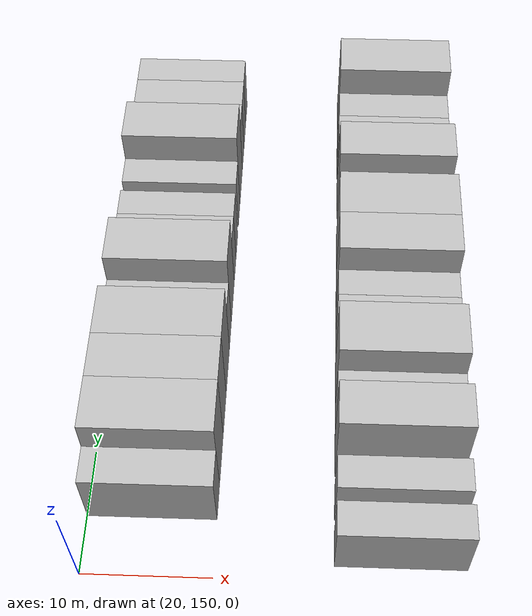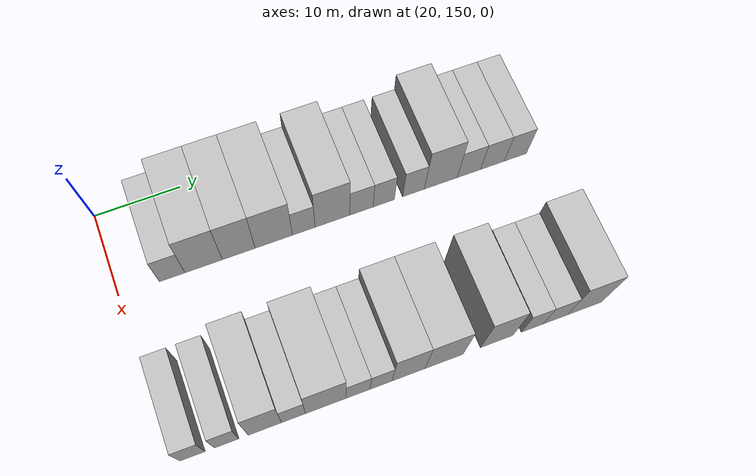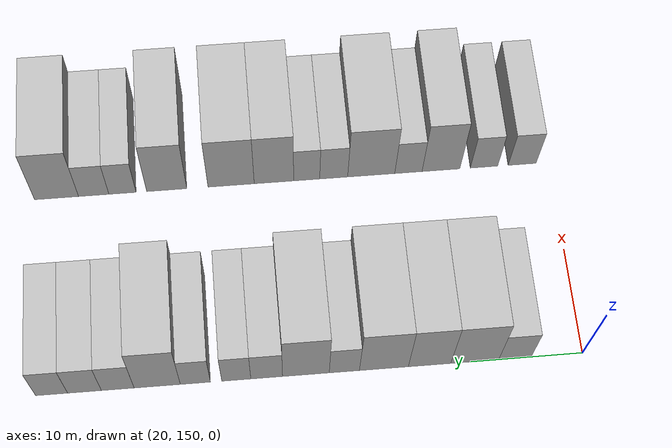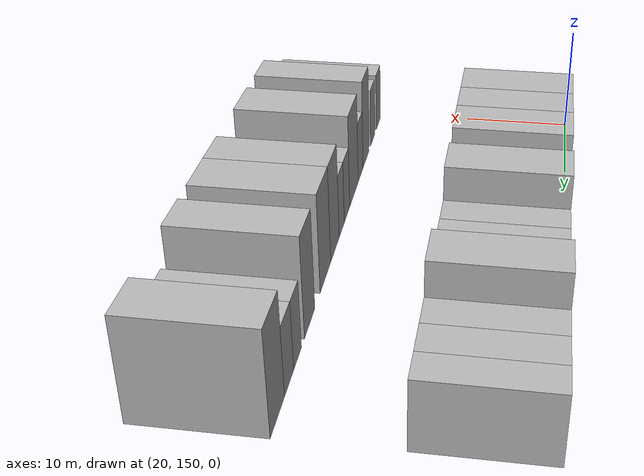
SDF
<sdf version="1.6">
 <world name="default">
  <model name="building_92">
   <static>1</static>
   <pose>25.0000 156.0804 0 0.000000 0.000000 0.000000</pose>
   <link name="link">
    <pose>0 0 3.00 0 0 0</pose>
    <collision name="collision"><geometry><box><size>10.0000 2.9036 6.0000</size></box></geometry></collision>
    <visual name="visual">
     <cast_shadows>0</cast_shadows>
     <geometry><box><size>10.0000 2.9036 6.0000</size></box></geometry>
     <material>
      <script>
       <uri>model://HANNAS_wall/materials/scripts</uri>
       <uri>model://HANNAS_wall/materials/textures</uri>
       <name>vrc/HANNAS_wall</name>
      </script>
     </material>
    </visual>
   </link>
  </model>
  <model name="building_93">
   <static>1</static>
   <pose>25.0000 159.6761 0 0.000000 0.000000 0.000000</pose>
   <link name="link">
    <pose>0 0 4.50 0 0 0</pose>
    <collision name="collision"><geometry><box><size>10.0000 4.2876 9.0000</size></box></geometry></collision>
    <visual name="visual">
     <cast_shadows>0</cast_shadows>
     <geometry><box><size>10.0000 4.2876 9.0000</size></box></geometry>
     <material>
      <script>
       <uri>model://HANNAS_wall/materials/scripts</uri>
       <uri>model://HANNAS_wall/materials/textures</uri>
       <name>vrc/HANNAS_wall</name>
      </script>
     </material>
    </visual>
   </link>
  </model>
  <model name="building_94">
   <static>1</static>
   <pose>25.0000 163.7129 0 0.000000 0.000000 0.000000</pose>
   <link name="link">
    <pose>0 0 4.50 0 0 0</pose>
    <collision name="collision"><geometry><box><size>10.0000 3.7861 9.0000</size></box></geometry></collision>
    <visual name="visual">
     <cast_shadows>0</cast_shadows>
     <geometry><box><size>10.0000 3.7861 9.0000</size></box></geometry>
     <material>
      <script>
       <uri>model://HANNAS_wall/materials/scripts</uri>
       <uri>model://HANNAS_wall/materials/textures</uri>
       <name>vrc/HANNAS_wall</name>
      </script>
     </material>
    </visual>
   </link>
  </model>
  <model name="building_95">
   <static>1</static>
   <pose>25.0000 167.7849 0 0.000000 0.000000 0.000000</pose>
   <link name="link">
    <pose>0 0 4.50 0 0 0</pose>
    <collision name="collision"><geometry><box><size>10.0000 4.3579 9.0000</size></box></geometry></collision>
    <visual name="visual">
     <cast_shadows>0</cast_shadows>
     <geometry><box><size>10.0000 4.3579 9.0000</size></box></geometry>
     <material>
      <script>
       <uri>model://HANNAS_wall/materials/scripts</uri>
       <uri>model://HANNAS_wall/materials/textures</uri>
       <name>vrc/HANNAS_wall</name>
      </script>
     </material>
    </visual>
   </link>
  </model>
  <model name="building_96">
   <static>1</static>
   <pose>25.0000 171.3018 0 0.000000 0.000000 0.000000</pose>
   <link name="link">
    <pose>0 0 3.00 0 0 0</pose>
    <collision name="collision"><geometry><box><size>10.0000 2.6759 6.0000</size></box></geometry></collision>
    <visual name="visual">
     <cast_shadows>0</cast_shadows>
     <geometry><box><size>10.0000 2.6759 6.0000</size></box></geometry>
     <material>
      <script>
       <uri>model://HANNAS_wall/materials/scripts</uri>
       <uri>model://HANNAS_wall/materials/textures</uri>
       <name>vrc/HANNAS_wall</name>
      </script>
     </material>
    </visual>
   </link>
  </model>
  <model name="building_97">
   <static>1</static>
   <pose>25.0000 174.7092 0 0.000000 0.000000 0.000000</pose>
   <link name="link">
    <pose>0 0 4.50 0 0 0</pose>
    <collision name="collision"><geometry><box><size>10.0000 4.1390 9.0000</size></box></geometry></collision>
    <visual name="visual">
     <cast_shadows>0</cast_shadows>
     <geometry><box><size>10.0000 4.1390 9.0000</size></box></geometry>
     <material>
      <script>
       <uri>model://HANNAS_wall/materials/scripts</uri>
       <uri>model://HANNAS_wall/materials/textures</uri>
       <name>vrc/HANNAS_wall</name>
      </script>
     </material>
    </visual>
   </link>
  </model>
  <model name="building_98">
   <static>1</static>
   <pose>25.0000 178.1788 0 0.000000 0.000000 0.000000</pose>
   <link name="link">
    <pose>0 0 3.00 0 0 0</pose>
    <collision name="collision"><geometry><box><size>10.0000 2.8002 6.0000</size></box></geometry></collision>
    <visual name="visual">
     <cast_shadows>0</cast_shadows>
     <geometry><box><size>10.0000 2.8002 6.0000</size></box></geometry>
     <material>
      <script>
       <uri>model://HANNAS_wall/materials/scripts</uri>
       <uri>model://HANNAS_wall/materials/textures</uri>
       <name>vrc/HANNAS_wall</name>
      </script>
     </material>
    </visual>
   </link>
  </model>
  <model name="building_99">
   <static>1</static>
   <pose>25.0000 180.8631 0 0.000000 0.000000 0.000000</pose>
   <link name="link">
    <pose>0 0 3.00 0 0 0</pose>
    <collision name="collision"><geometry><box><size>10.0000 2.5684 6.0000</size></box></geometry></collision>
    <visual name="visual">
     <cast_shadows>0</cast_shadows>
     <geometry><box><size>10.0000 2.5684 6.0000</size></box></geometry>
     <material>
      <script>
       <uri>model://HANNAS_wall/materials/scripts</uri>
       <uri>model://HANNAS_wall/materials/textures</uri>
       <name>vrc/HANNAS_wall</name>
      </script>
     </material>
    </visual>
   </link>
  </model>
  <model name="building_100">
   <static>1</static>
   <pose>25.0000 184.4745 0 0.000000 0.000000 0.000000</pose>
   <link name="link">
    <pose>0 0 3.00 0 0 0</pose>
    <collision name="collision"><geometry><box><size>10.0000 2.6544 6.0000</size></box></geometry></collision>
    <visual name="visual">
     <cast_shadows>0</cast_shadows>
     <geometry><box><size>10.0000 2.6544 6.0000</size></box></geometry>
     <material>
      <script>
       <uri>model://HANNAS_wall/materials/scripts</uri>
       <uri>model://HANNAS_wall/materials/textures</uri>
       <name>vrc/HANNAS_wall</name>
      </script>
     </material>
    </visual>
   </link>
  </model>
  <model name="building_101">
   <static>1</static>
   <pose>25.0000 187.8325 0 0.000000 0.000000 0.000000</pose>
   <link name="link">
    <pose>0 0 4.50 0 0 0</pose>
    <collision name="collision"><geometry><box><size>10.0000 4.0618 9.0000</size></box></geometry></collision>
    <visual name="visual">
     <cast_shadows>0</cast_shadows>
     <geometry><box><size>10.0000 4.0618 9.0000</size></box></geometry>
     <material>
      <script>
       <uri>model://HANNAS_wall/materials/scripts</uri>
       <uri>model://HANNAS_wall/materials/textures</uri>
       <name>vrc/HANNAS_wall</name>
      </script>
     </material>
    </visual>
   </link>
  </model>
  <model name="building_102">
   <static>1</static>
   <pose>25.0000 191.3025 0 0.000000 0.000000 0.000000</pose>
   <link name="link">
    <pose>0 0 3.00 0 0 0</pose>
    <collision name="collision"><geometry><box><size>10.0000 2.8781 6.0000</size></box></geometry></collision>
    <visual name="visual">
     <cast_shadows>0</cast_shadows>
     <geometry><box><size>10.0000 2.8781 6.0000</size></box></geometry>
     <material>
      <script>
       <uri>model://HANNAS_wall/materials/scripts</uri>
       <uri>model://HANNAS_wall/materials/textures</uri>
       <name>vrc/HANNAS_wall</name>
      </script>
     </material>
    </visual>
   </link>
  </model>
  <model name="building_103">
   <static>1</static>
   <pose>25.0000 194.2213 0 0.000000 0.000000 0.000000</pose>
   <link name="link">
    <pose>0 0 3.00 0 0 0</pose>
    <collision name="collision"><geometry><box><size>10.0000 2.9597 6.0000</size></box></geometry></collision>
    <visual name="visual">
     <cast_shadows>0</cast_shadows>
     <geometry><box><size>10.0000 2.9597 6.0000</size></box></geometry>
     <material>
      <script>
       <uri>model://HANNAS_wall/materials/scripts</uri>
       <uri>model://HANNAS_wall/materials/textures</uri>
       <name>vrc/HANNAS_wall</name>
      </script>
     </material>
    </visual>
   </link>
  </model>
  <model name="building_104">
   <static>1</static>
   <pose>25.0000 197.1024 0 0.000000 0.000000 0.000000</pose>
   <link name="link">
    <pose>0 0 3.00 0 0 0</pose>
    <collision name="collision"><geometry><box><size>10.0000 2.8024 6.0000</size></box></geometry></collision>
    <visual name="visual">
     <cast_shadows>0</cast_shadows>
     <geometry><box><size>10.0000 2.8024 6.0000</size></box></geometry>
     <material>
      <script>
       <uri>model://HANNAS_wall/materials/scripts</uri>
       <uri>model://HANNAS_wall/materials/textures</uri>
       <name>vrc/HANNAS_wall</name>
      </script>
     </material>
    </visual>
   </link>
  </model>
  <model name="building_191">
   <static>1</static>
   <pose>44.0000 152.5418 0 0.000000 0.000000 0.000000</pose>
   <link name="link">
    <pose>0 0 3.00 0 0 0</pose>
    <collision name="collision"><geometry><box><size>10.0000 2.6724 6.0000</size></box></geometry></collision>
    <visual name="visual">
     <cast_shadows>0</cast_shadows>
     <geometry><box><size>10.0000 2.6724 6.0000</size></box></geometry>
     <material>
      <script>
       <uri>model://HANNAS_wall/materials/scripts</uri>
       <uri>model://HANNAS_wall/materials/textures</uri>
       <name>vrc/HANNAS_wall</name>
      </script>
     </material>
    </visual>
   </link>
  </model>
  <model name="building_192">
   <static>1</static>
   <pose>44.0000 156.1852 0 0.000000 0.000000 0.000000</pose>
   <link name="link">
    <pose>0 0 3.00 0 0 0</pose>
    <collision name="collision"><geometry><box><size>10.0000 2.6142 6.0000</size></box></geometry></collision>
    <visual name="visual">
     <cast_shadows>0</cast_shadows>
     <geometry><box><size>10.0000 2.6142 6.0000</size></box></geometry>
     <material>
      <script>
       <uri>model://HANNAS_wall/materials/scripts</uri>
       <uri>model://HANNAS_wall/materials/textures</uri>
       <name>vrc/HANNAS_wall</name>
      </script>
     </material>
    </visual>
   </link>
  </model>
  <model name="building_193">
   <static>1</static>
   <pose>44.0000 160.2935 0 0.000000 0.000000 0.000000</pose>
   <link name="link">
    <pose>0 0 4.50 0 0 0</pose>
    <collision name="collision"><geometry><box><size>10.0000 3.6025 9.0000</size></box></geometry></collision>
    <visual name="visual">
     <cast_shadows>0</cast_shadows>
     <geometry><box><size>10.0000 3.6025 9.0000</size></box></geometry>
     <material>
      <script>
       <uri>model://HANNAS_wall/materials/scripts</uri>
       <uri>model://HANNAS_wall/materials/textures</uri>
       <name>vrc/HANNAS_wall</name>
      </script>
     </material>
    </visual>
   </link>
  </model>
  <model name="building_194">
   <static>1</static>
   <pose>44.0000 163.3955 0 0.000000 0.000000 0.000000</pose>
   <link name="link">
    <pose>0 0 3.00 0 0 0</pose>
    <collision name="collision"><geometry><box><size>10.0000 2.6013 6.0000</size></box></geometry></collision>
    <visual name="visual">
     <cast_shadows>0</cast_shadows>
     <geometry><box><size>10.0000 2.6013 6.0000</size></box></geometry>
     <material>
      <script>
       <uri>model://HANNAS_wall/materials/scripts</uri>
       <uri>model://HANNAS_wall/materials/textures</uri>
       <name>vrc/HANNAS_wall</name>
      </script>
     </material>
    </visual>
   </link>
  </model>
  <model name="building_195">
   <static>1</static>
   <pose>44.0000 166.9324 0 0.000000 0.000000 0.000000</pose>
   <link name="link">
    <pose>0 0 4.50 0 0 0</pose>
    <collision name="collision"><geometry><box><size>10.0000 4.4726 9.0000</size></box></geometry></collision>
    <visual name="visual">
     <cast_shadows>0</cast_shadows>
     <geometry><box><size>10.0000 4.4726 9.0000</size></box></geometry>
     <material>
      <script>
       <uri>model://HANNAS_wall/materials/scripts</uri>
       <uri>model://HANNAS_wall/materials/textures</uri>
       <name>vrc/HANNAS_wall</name>
      </script>
     </material>
    </visual>
   </link>
  </model>
  <model name="building_196">
   <static>1</static>
   <pose>44.0000 170.4941 0 0.000000 0.000000 0.000000</pose>
   <link name="link">
    <pose>0 0 3.00 0 0 0</pose>
    <collision name="collision"><geometry><box><size>10.0000 2.6508 6.0000</size></box></geometry></collision>
    <visual name="visual">
     <cast_shadows>0</cast_shadows>
     <geometry><box><size>10.0000 2.6508 6.0000</size></box></geometry>
     <material>
      <script>
       <uri>model://HANNAS_wall/materials/scripts</uri>
       <uri>model://HANNAS_wall/materials/textures</uri>
       <name>vrc/HANNAS_wall</name>
      </script>
     </material>
    </visual>
   </link>
  </model>
  <model name="building_197">
   <static>1</static>
   <pose>44.0000 173.0570 0 0.000000 0.000000 0.000000</pose>
   <link name="link">
    <pose>0 0 3.00 0 0 0</pose>
    <collision name="collision"><geometry><box><size>10.0000 2.4749 6.0000</size></box></geometry></collision>
    <visual name="visual">
     <cast_shadows>0</cast_shadows>
     <geometry><box><size>10.0000 2.4749 6.0000</size></box></geometry>
     <material>
      <script>
       <uri>model://HANNAS_wall/materials/scripts</uri>
       <uri>model://HANNAS_wall/materials/textures</uri>
       <name>vrc/HANNAS_wall</name>
      </script>
     </material>
    </visual>
   </link>
  </model>
  <model name="building_198">
   <static>1</static>
   <pose>44.0000 176.1536 0 0.000000 0.000000 0.000000</pose>
   <link name="link">
    <pose>0 0 4.50 0 0 0</pose>
    <collision name="collision"><geometry><box><size>10.0000 3.7184 9.0000</size></box></geometry></collision>
    <visual name="visual">
     <cast_shadows>0</cast_shadows>
     <geometry><box><size>10.0000 3.7184 9.0000</size></box></geometry>
     <material>
      <script>
       <uri>model://HANNAS_wall/materials/scripts</uri>
       <uri>model://HANNAS_wall/materials/textures</uri>
       <name>vrc/HANNAS_wall</name>
      </script>
     </material>
    </visual>
   </link>
  </model>
  <model name="building_199">
   <static>1</static>
   <pose>44.0000 180.1910 0 0.000000 0.000000 0.000000</pose>
   <link name="link">
    <pose>0 0 4.50 0 0 0</pose>
    <collision name="collision"><geometry><box><size>10.0000 4.3564 9.0000</size></box></geometry></collision>
    <visual name="visual">
     <cast_shadows>0</cast_shadows>
     <geometry><box><size>10.0000 4.3564 9.0000</size></box></geometry>
     <material>
      <script>
       <uri>model://HANNAS_wall/materials/scripts</uri>
       <uri>model://HANNAS_wall/materials/textures</uri>
       <name>vrc/HANNAS_wall</name>
      </script>
     </material>
    </visual>
   </link>
  </model>
  <model name="building_200">
   <static>1</static>
   <pose>44.0000 186.2522 0 0.000000 0.000000 0.000000</pose>
   <link name="link">
    <pose>0 0 4.50 0 0 0</pose>
    <collision name="collision"><geometry><box><size>10.0000 3.7659 9.0000</size></box></geometry></collision>
    <visual name="visual">
     <cast_shadows>0</cast_shadows>
     <geometry><box><size>10.0000 3.7659 9.0000</size></box></geometry>
     <material>
      <script>
       <uri>model://HANNAS_wall/materials/scripts</uri>
       <uri>model://HANNAS_wall/materials/textures</uri>
       <name>vrc/HANNAS_wall</name>
      </script>
     </material>
    </visual>
   </link>
  </model>
  <model name="building_201">
   <static>1</static>
   <pose>44.0000 190.4093 0 0.000000 0.000000 0.000000</pose>
   <link name="link">
    <pose>0 0 3.00 0 0 0</pose>
    <collision name="collision"><geometry><box><size>10.0000 2.5484 6.0000</size></box></geometry></collision>
    <visual name="visual">
     <cast_shadows>0</cast_shadows>
     <geometry><box><size>10.0000 2.5484 6.0000</size></box></geometry>
     <material>
      <script>
       <uri>model://HANNAS_wall/materials/scripts</uri>
       <uri>model://HANNAS_wall/materials/textures</uri>
       <name>vrc/HANNAS_wall</name>
      </script>
     </material>
    </visual>
   </link>
  </model>
  <model name="building_202">
   <static>1</static>
   <pose>44.0000 193.1043 0 0.000000 0.000000 0.000000</pose>
   <link name="link">
    <pose>0 0 3.00 0 0 0</pose>
    <collision name="collision"><geometry><box><size>10.0000 2.8417 6.0000</size></box></geometry></collision>
    <visual name="visual">
     <cast_shadows>0</cast_shadows>
     <geometry><box><size>10.0000 2.8417 6.0000</size></box></geometry>
     <material>
      <script>
       <uri>model://HANNAS_wall/materials/scripts</uri>
       <uri>model://HANNAS_wall/materials/textures</uri>
       <name>vrc/HANNAS_wall</name>
      </script>
     </material>
    </visual>
   </link>
  </model>
  <model name="building_203">
   <static>1</static>
   <pose>44.0000 196.5828 0 0.000000 0.000000 0.000000</pose>
   <link name="link">
    <pose>0 0 4.50 0 0 0</pose>
    <collision name="collision"><geometry><box><size>10.0000 4.1154 9.0000</size></box></geometry></collision>
    <visual name="visual">
     <cast_shadows>0</cast_shadows>
     <geometry><box><size>10.0000 4.1154 9.0000</size></box></geometry>
     <material>
      <script>
       <uri>model://HANNAS_wall/materials/scripts</uri>
       <uri>model://HANNAS_wall/materials/textures</uri>
       <name>vrc/HANNAS_wall</name>
      </script>
     </material>
    </visual>
   </link>
  </model>
 </world>
</sdf>
